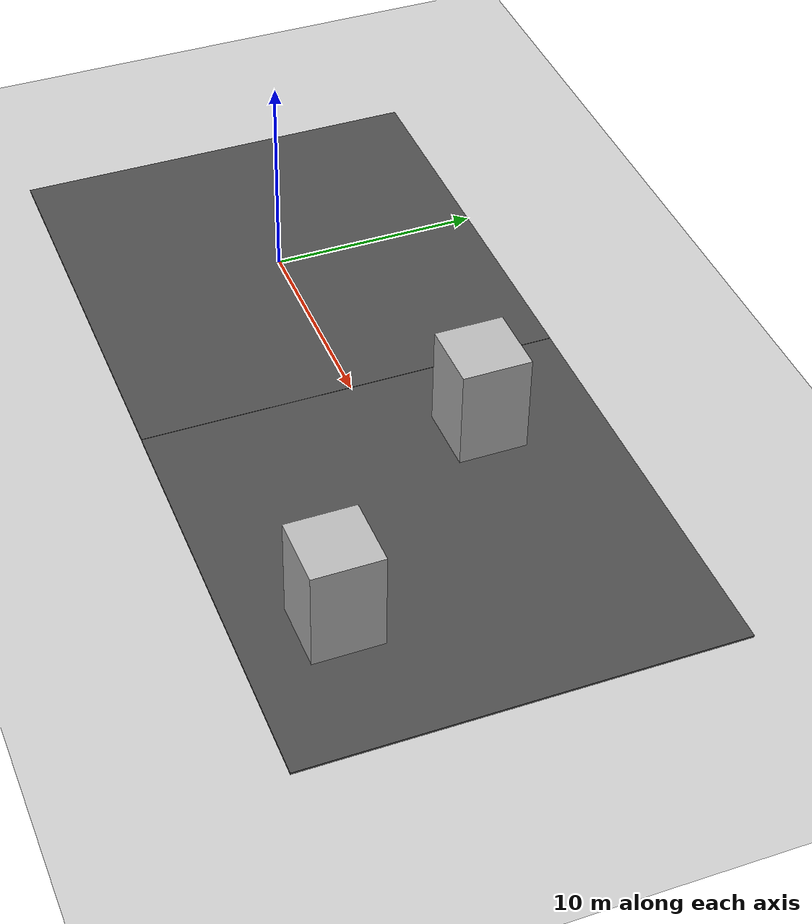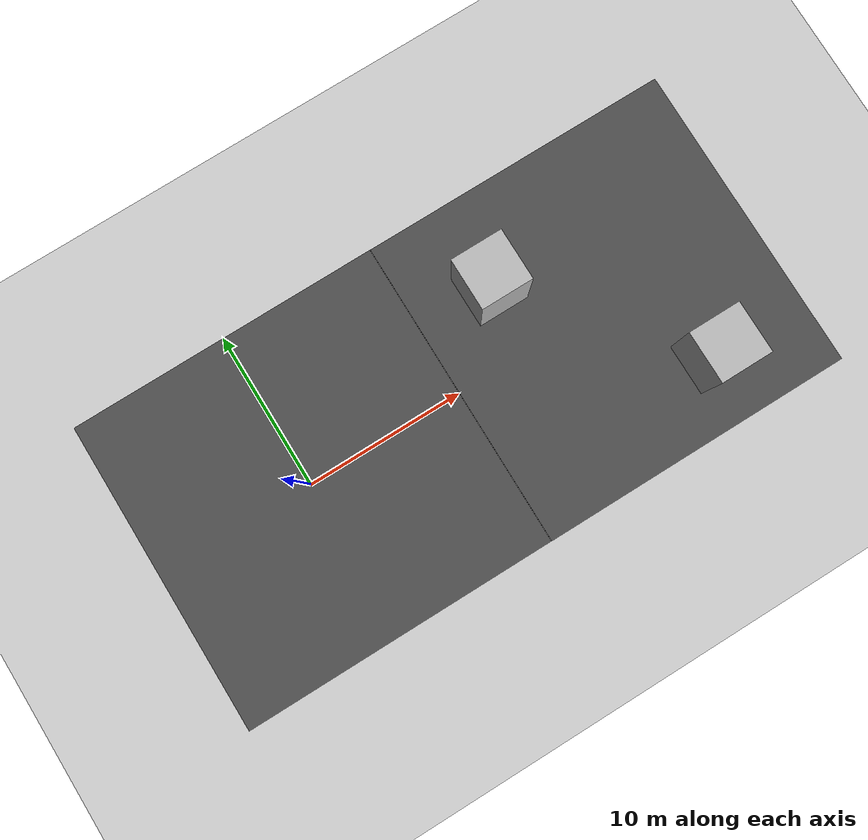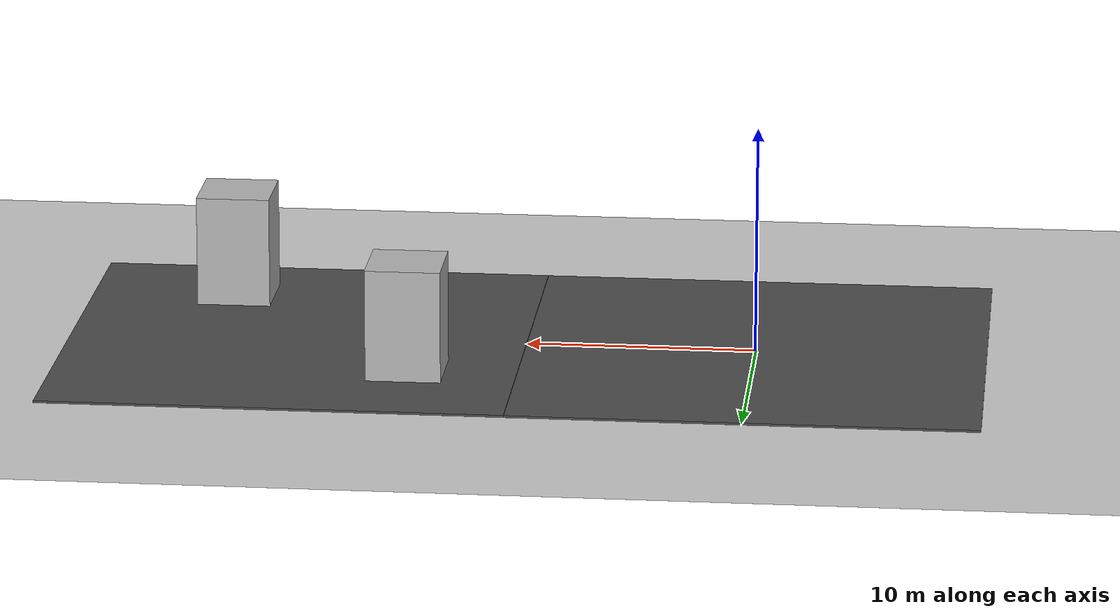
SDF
<sdf version="1.7">
 <world name="default">
  <light name="sun" type="directional">
   <pose>0 0 10 0 -0 0</pose>
   <diffuse>0.8 0.8 0.8 1</diffuse>
   <specular>0.2 0.2 0.2 1</specular>
   <attenuation>
    <range>1000</range>
    <constant>0.9</constant>
    <linear>0.01</linear>
    <quadratic>0.001</quadratic>
   </attenuation>
   <direction>-0.5 0.1 -0.9</direction>
   <spot><inner_angle>0</inner_angle><outer_angle>0</outer_angle><falloff>0</falloff></spot>
  </light>
  <model name="ground_plane">
   <static>1</static>
   <link name="link">
    <collision name="collision">
     <geometry><plane><normal>0 0 1</normal><size>100 100</size></plane></geometry>
     <surface>
      <contact><collide_bitmask>65535</collide_bitmask></contact>
      <friction><ode><mu>100</mu><mu2>50</mu2></ode></friction>
     </surface>
    </collision>
    <visual name="visual">
     <cast_shadows>0</cast_shadows>
     <geometry><plane><normal>0 0 1</normal><size>100 100</size></plane></geometry>
     <material>
      <script><uri>file://media/materials/scripts/gazebo.material</uri><name>Gazebo/Grey</name></script>
     </material>
    </visual>
   </link>
  </model>
  <model name="asphalt_plane">
   <static>1</static>
   <link name="link">
    <collision name="collision"><geometry><box><size>20 20 0.1</size></box></geometry></collision>
    <visual name="visual">
     <cast_shadows>0</cast_shadows>
     <geometry><box><size>20 20 0.1</size></box></geometry>
     <material>
      <script>
       <uri>model://asphalt_plane/materials/scripts</uri>
       <uri>model://asphalt_plane/materials/textures</uri>
       <name>vrc/asphalt</name>
      </script>
     </material>
    </visual>
   </link>
  </model>
  <physics name="default_physics" default="0" type="ode">
   <ode>
    <solver>
     <type>quick</type>
     <iters>10</iters>
     <sor>1.3</sor>
     <use_dynamic_moi_rescaling>0</use_dynamic_moi_rescaling>
    </solver>
    <constraints>
     <cfm>0</cfm>
     <erp>0.2</erp>
     <contact_max_correcting_vel>100</contact_max_correcting_vel>
     <contact_surface_layer>0.001</contact_surface_layer>
    </constraints>
   </ode>
   <max_step_size>0.004</max_step_size>
   <real_time_factor>1</real_time_factor>
   <real_time_update_rate>250</real_time_update_rate>
  </physics>
  <gravity>0 0 -9.8066</gravity>
  <magnetic_field>6e-06 2.3e-05 -4.2e-05</magnetic_field>
  <atmosphere type="adiabatic"/>
  <scene><ambient>0.4 0.4 0.4 1</ambient><background>0.7 0.7 0.7 1</background><shadows>1</shadows></scene>
  <spherical_coordinates>
   <surface_model>EARTH_WGS84</surface_model>
   <latitude_deg>0</latitude_deg>
   <longitude_deg>0</longitude_deg>
   <elevation>0</elevation>
   <heading_deg>0</heading_deg>
  </spherical_coordinates>
  <model name="asphalt_plane_clone">
   <static>1</static>
   <link name="link">
    <collision name="collision"><geometry><box><size>20 20 0.1</size></box></geometry></collision>
    <visual name="visual">
     <cast_shadows>0</cast_shadows>
     <geometry><box><size>20 20 0.1</size></box></geometry>
     <material>
      <script>
       <uri>model://asphalt_plane/materials/scripts</uri>
       <uri>model://asphalt_plane/materials/textures</uri>
       <name>vrc/asphalt</name>
      </script>
     </material>
    </visual>
   </link>
   <pose>20.0199 -0.008735 0 0 -0 0</pose>
  </model>
  <model name="Fire">
   <link name="link_0">
    <inertial>
     <mass>51.3237</mass>
     <inertia><ixx>147.461</ixx><ixy>0</ixy><ixz>0</ixz><iyy>147.461</iyy><iyz>0</iyz><izz>89.614</izz></inertia>
    </inertial>
    <pose>3e-06 5e-06 0 0 -0 0</pose>
    <visual name="visual">
     <geometry><box><size>3.23671 3.23672 4.89914</size></box></geometry>
     <material>
      <lighting>1</lighting>
      <script><uri>file://media/materials/scripts/gazebo.material</uri><name>Gazebo/Fire</name></script>
      <shader type="pixel"/>
     </material>
    </visual>
    <collision name="collision">
     <geometry><box><size>3.23671 3.23672 4.89914</size></box></geometry>
     <surface>
      <friction>
       <ode><mu>1</mu><mu2>1</mu2><fdir1>0 0 0</fdir1><slip1>0</slip1><slip2>0</slip2></ode>
       <torsional>
        <coefficient>1</coefficient>
        <patch_radius>0</patch_radius>
        <surface_radius>0</surface_radius>
        <use_patch_radius>1</use_patch_radius>
        <ode><slip>0</slip></ode>
       </torsional>
      </friction>
      <bounce><restitution_coefficient>0</restitution_coefficient><threshold>1e+06</threshold></bounce>
      <contact>
       <collide_without_contact>0</collide_without_contact>
       <collide_without_contact_bitmask>1</collide_without_contact_bitmask>
       <collide_bitmask>1</collide_bitmask>
       <ode>
        <soft_cfm>0</soft_cfm>
        <soft_erp>0.2</soft_erp>
        <kp>1e+13</kp>
        <kd>1</kd>
        <max_vel>0.01</max_vel>
        <min_depth>0</min_depth>
       </ode>
       <bullet>
        <split_impulse>1</split_impulse>
        <split_impulse_penetration_threshold>-0.01</split_impulse_penetration_threshold>
        <soft_cfm>0</soft_cfm>
        <soft_erp>0.2</soft_erp>
        <kp>1e+13</kp>
        <kd>1</kd>
       </bullet>
      </contact>
     </surface>
    </collision>
   </link>
   <static>0</static>
   <pose>14.7616 4.32915 2.49954 -1.8e-05 1e-06 0.002772</pose>
  </model>
  <model name="Fire_0">
   <link name="link_0">
    <inertial>
     <mass>51.3237</mass>
     <inertia><ixx>147.461</ixx><ixy>0</ixy><ixz>0</ixz><iyy>147.461</iyy><iyz>0</iyz><izz>89.614</izz></inertia>
    </inertial>
    <pose>3e-06 5e-06 0 0 -0 0</pose>
    <visual name="visual">
     <geometry><box><size>3.23671 3.23672 4.89914</size></box></geometry>
     <material>
      <lighting>1</lighting>
      <script><uri>file://media/materials/scripts/gazebo.material</uri><name>Gazebo/Fire</name></script>
      <shader type="pixel"/>
     </material>
    </visual>
    <collision name="collision">
     <geometry><box><size>3.23671 3.23672 4.89914</size></box></geometry>
     <surface>
      <friction>
       <ode><mu>1</mu><mu2>1</mu2><fdir1>0 0 0</fdir1><slip1>0</slip1><slip2>0</slip2></ode>
       <torsional>
        <coefficient>1</coefficient>
        <patch_radius>0</patch_radius>
        <surface_radius>0</surface_radius>
        <use_patch_radius>1</use_patch_radius>
        <ode><slip>0</slip></ode>
       </torsional>
      </friction>
      <bounce><restitution_coefficient>0</restitution_coefficient><threshold>1e+06</threshold></bounce>
      <contact>
       <collide_without_contact>0</collide_without_contact>
       <collide_without_contact_bitmask>1</collide_without_contact_bitmask>
       <collide_bitmask>1</collide_bitmask>
       <ode>
        <soft_cfm>0</soft_cfm>
        <soft_erp>0.2</soft_erp>
        <kp>1e+13</kp>
        <kd>1</kd>
        <max_vel>0.01</max_vel>
        <min_depth>0</min_depth>
       </ode>
       <bullet>
        <split_impulse>1</split_impulse>
        <split_impulse_penetration_threshold>-0.01</split_impulse_penetration_threshold>
        <soft_cfm>0</soft_cfm>
        <soft_erp>0.2</soft_erp>
        <kp>1e+13</kp>
        <kd>1</kd>
       </bullet>
      </contact>
     </surface>
    </collision>
   </link>
   <static>0</static>
   <pose>23.5329 -5.78874 2.49957 7e-06 1e-06 0.002781</pose>
  </model>
 </world>
</sdf>
